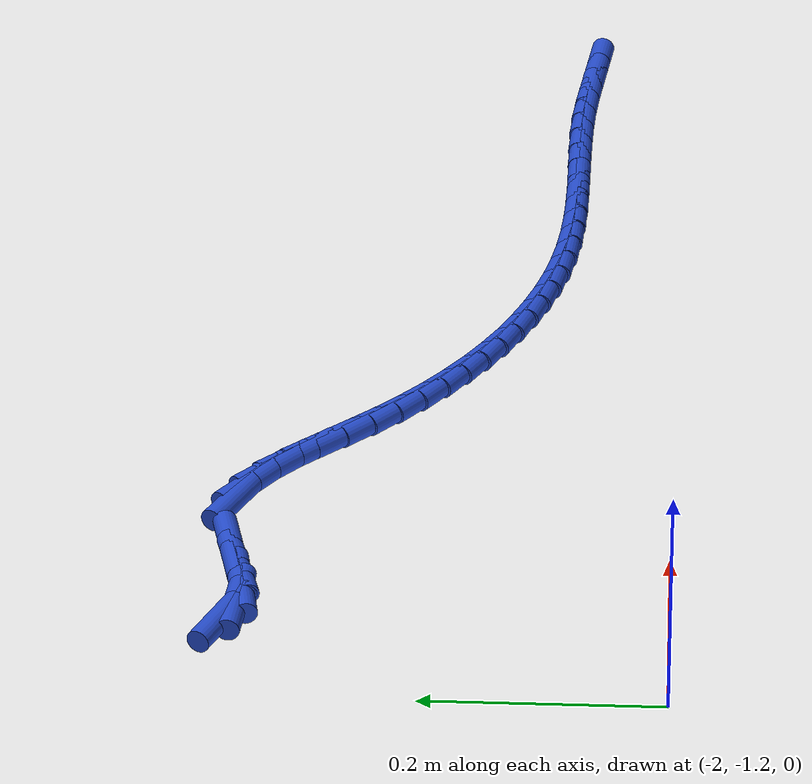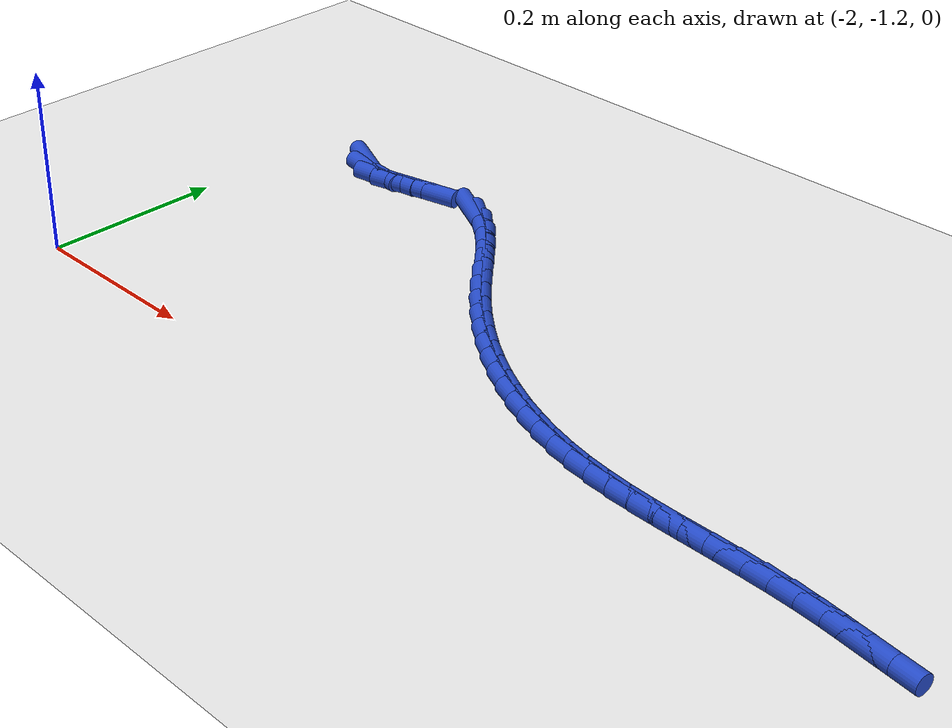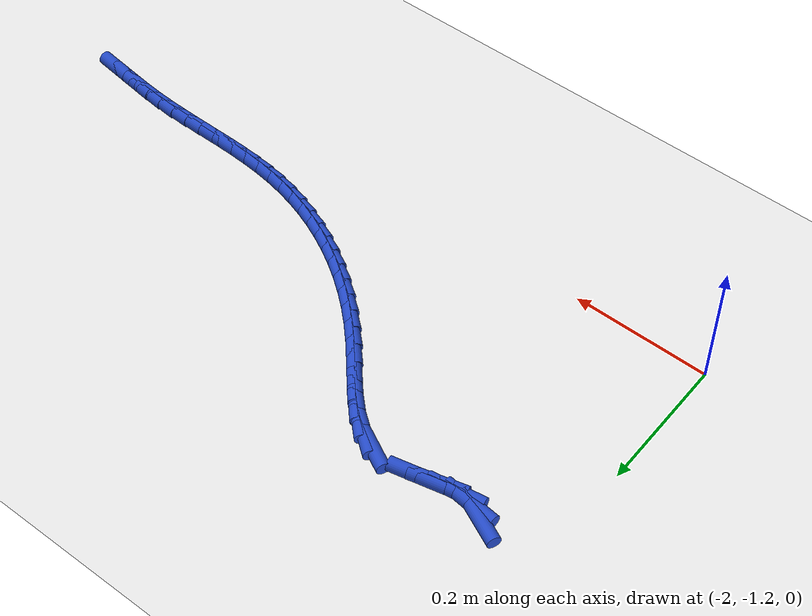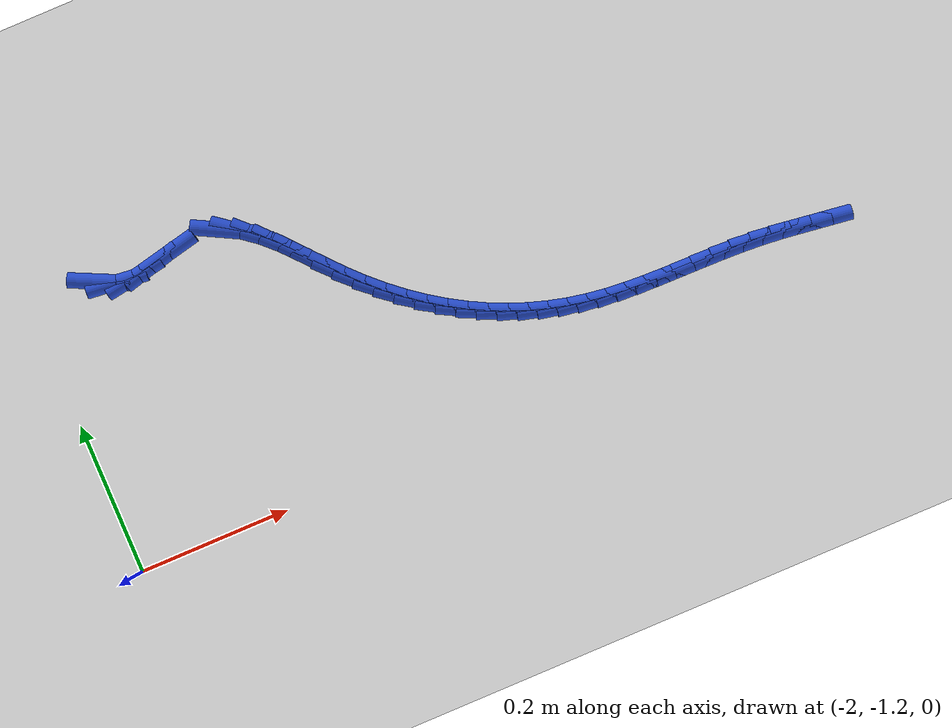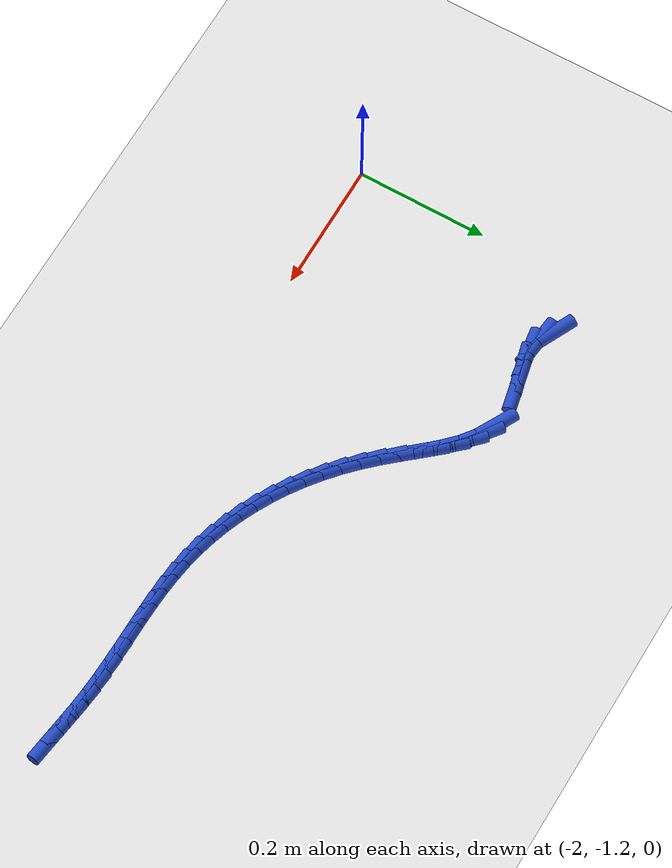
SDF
<sdf version="1.6">
 <world name="default">
  <model name="ground_plane">
   <static>1</static>
   <link name="link">
    <collision name="collision">
     <geometry><plane><normal>0 0 1</normal><size>100 100</size></plane></geometry>
     <surface><friction><ode><mu>100</mu><mu2>50</mu2></ode></friction></surface>
    </collision>
    <visual name="visual">
     <cast_shadows>0</cast_shadows>
     <geometry><plane><normal>0 0 1</normal><size>100 100</size></plane></geometry>
     <material>
      <script><uri>file://media/materials/scripts/gazebo.material</uri><name>Gazebo/WhiteGlow</name></script>
     </material>
    </visual>
   </link>
  </model>
  <model name="line">
   <link name="link_185">
    <pose>-1.9054137645655325 -0.8402780112544987 0.01 0 1.57 -0.4435042516216946</pose>
    <collision name="collision">
     <geometry><cylinder><radius>0.01</radius><length>0.08</length></cylinder></geometry>
    </collision>
    <visual name="visual">
     <material>
      <script><name>Gazebo/Blue</name><uri>file://media/materials/scripts/gazebo.material</uri></script>
     </material>
     <geometry><cylinder><radius>0.01</radius><length>0.08</length></cylinder></geometry>
    </visual>
   </link>
   <link name="link_186">
    <pose>-1.885073026390237 -0.8499412558973295 0.01 0 1.57 -0.10656992894562407</pose>
    <collision name="collision">
     <geometry><cylinder><radius>0.01</radius><length>0.08</length></cylinder></geometry>
    </collision>
    <visual name="visual">
     <material>
      <script><name>Gazebo/Blue</name><uri>file://media/materials/scripts/gazebo.material</uri></script>
     </material>
     <geometry><cylinder><radius>0.01</radius><length>0.08</length></cylinder></geometry>
    </visual>
   </link>
   <link name="link_187">
    <pose>-1.8621823950808545 -0.8523899860744041 0.01 0 1.57 0.15936166044765876</pose>
    <collision name="collision">
     <geometry><cylinder><radius>0.01</radius><length>0.08</length></cylinder></geometry>
    </collision>
    <visual name="visual">
     <material>
      <script><name>Gazebo/Blue</name><uri>file://media/materials/scripts/gazebo.material</uri></script>
     </material>
     <geometry><cylinder><radius>0.01</radius><length>0.08</length></cylinder></geometry>
    </visual>
   </link>
   <link name="link_188">
    <pose>-1.8371226980825228 -0.8483622771986161 0.01 0 1.57 0.25692435934542496</pose>
    <collision name="collision">
     <geometry><cylinder><radius>0.01</radius><length>0.08</length></cylinder></geometry>
    </collision>
    <visual name="visual">
     <material>
      <script><name>Gazebo/Blue</name><uri>file://media/materials/scripts/gazebo.material</uri></script>
     </material>
     <geometry><cylinder><radius>0.01</radius><length>0.08</length></cylinder></geometry>
    </visual>
   </link>
   <link name="link_189">
    <pose>-1.8110017778790914 -0.8414995035998011 0.01 0 1.57 0.21888201479459338</pose>
    <collision name="collision">
     <geometry><cylinder><radius>0.01</radius><length>0.08</length></cylinder></geometry>
    </collision>
    <visual name="visual">
     <material>
      <script><name>Gazebo/Blue</name><uri>file://media/materials/scripts/gazebo.material</uri></script>
     </material>
     <geometry><cylinder><radius>0.01</radius><length>0.08</length></cylinder></geometry>
    </visual>
   </link>
   <link name="link_192">
    <pose>-1.7372785083505897 -0.8405249450380923 0.01 0 1.57 -0.48090458856575136</pose>
    <collision name="collision">
     <geometry><cylinder><radius>0.01</radius><length>0.08</length></cylinder></geometry>
    </collision>
    <visual name="visual">
     <material>
      <script><name>Gazebo/Blue</name><uri>file://media/materials/scripts/gazebo.material</uri></script>
     </material>
     <geometry><cylinder><radius>0.01</radius><length>0.08</length></cylinder></geometry>
    </visual>
   </link>
   <link name="link_193">
    <pose>-1.7157610107988785 -0.8517519393175296 0.01 0 1.57 -0.6541856390213772</pose>
    <collision name="collision">
     <geometry><cylinder><radius>0.01</radius><length>0.08</length></cylinder></geometry>
    </collision>
    <visual name="visual">
     <material>
      <script><name>Gazebo/Blue</name><uri>file://media/materials/scripts/gazebo.material</uri></script>
     </material>
     <geometry><cylinder><radius>0.01</radius><length>0.08</length></cylinder></geometry>
    </visual>
   </link>
   <link name="link_194">
    <pose>-1.695365942284958 -0.8673914914414181 0.01 0 1.57 -0.7672512273337366</pose>
    <collision name="collision">
     <geometry><cylinder><radius>0.01</radius><length>0.08</length></cylinder></geometry>
    </collision>
    <visual name="visual">
     <material>
      <script><name>Gazebo/Blue</name><uri>file://media/materials/scripts/gazebo.material</uri></script>
     </material>
     <geometry><cylinder><radius>0.01</radius><length>0.08</length></cylinder></geometry>
    </visual>
   </link>
   <link name="link_195">
    <pose>-1.675753434631131 -0.8863047968749337 0.01 0 1.57 -0.8320705952762438</pose>
    <collision name="collision">
     <geometry><cylinder><radius>0.01</radius><length>0.08</length></cylinder></geometry>
    </collision>
    <visual name="visual">
     <material>
      <script><name>Gazebo/Blue</name><uri>file://media/materials/scripts/gazebo.material</uri></script>
     </material>
     <geometry><cylinder><radius>0.01</radius><length>0.08</length></cylinder></geometry>
    </visual>
   </link>
   <link name="link_196">
    <pose>-1.6565836196596992 -0.9073530510832526 0.01 0 1.57 -0.8576948869264718</pose>
    <collision name="collision">
     <geometry><cylinder><radius>0.01</radius><length>0.08</length></cylinder></geometry>
    </collision>
    <visual name="visual">
     <material>
      <script><name>Gazebo/Blue</name><uri>file://media/materials/scripts/gazebo.material</uri></script>
     </material>
     <geometry><cylinder><radius>0.01</radius><length>0.08</length></cylinder></geometry>
    </visual>
   </link>
   <link name="link_197">
    <pose>-1.6375166291929668 -0.9293974495315511 0.01 0 1.57 -0.8483570810530224</pose>
    <collision name="collision">
     <geometry><cylinder><radius>0.01</radius><length>0.08</length></cylinder></geometry>
    </collision>
    <visual name="visual">
     <material>
      <script><name>Gazebo/Blue</name><uri>file://media/materials/scripts/gazebo.material</uri></script>
     </material>
     <geometry><cylinder><radius>0.01</radius><length>0.08</length></cylinder></geometry>
    </visual>
   </link>
   <link name="link_198">
    <pose>-1.6182125950532353 -0.951299187685005 0.01 0 1.57 -0.8072348309550983</pose>
    <collision name="collision">
     <geometry><cylinder><radius>0.01</radius><length>0.08</length></cylinder></geometry>
    </collision>
    <visual name="visual">
     <material>
      <script><name>Gazebo/Blue</name><uri>file://media/materials/scripts/gazebo.material</uri></script>
     </material>
     <geometry><cylinder><radius>0.01</radius><length>0.08</length></cylinder></geometry>
    </visual>
   </link>
   <link name="link_199">
    <pose>-1.5983676563097724 -0.9720303133179993 0.01 0 1.57 -0.7555721177829479</pose>
    <collision name="collision">
     <geometry><cylinder><radius>0.01</radius><length>0.08</length></cylinder></geometry>
    </collision>
    <visual name="visual">
     <material>
      <script><name>Gazebo/Blue</name><uri>file://media/materials/scripts/gazebo.material</uri></script>
     </material>
     <geometry><cylinder><radius>0.01</radius><length>0.08</length></cylinder></geometry>
    </visual>
   </link>
   <link name="link_200">
    <pose>-1.577916310012444 -0.9912966857232672 0.01 0 1.57 -0.7026479733315156</pose>
    <collision name="collision">
     <geometry><cylinder><radius>0.01</radius><length>0.08</length></cylinder></geometry>
    </collision>
    <visual name="visual">
     <material>
      <script><name>Gazebo/Blue</name><uri>file://media/materials/scripts/gazebo.material</uri></script>
     </material>
     <geometry><cylinder><radius>0.01</radius><length>0.08</length></cylinder></geometry>
    </visual>
   </link>
   <link name="link_201">
    <pose>-1.556889915136409 -1.0091023643892818 0.01 0 1.57 -0.64860128897107</pose>
    <collision name="collision">
     <geometry><cylinder><radius>0.01</radius><length>0.08</length></cylinder></geometry>
    </collision>
    <visual name="visual">
     <material>
      <script><name>Gazebo/Blue</name><uri>file://media/materials/scripts/gazebo.material</uri></script>
     </material>
     <geometry><cylinder><radius>0.01</radius><length>0.08</length></cylinder></geometry>
    </visual>
   </link>
   <link name="link_202">
    <pose>-1.5353201103743053 -1.0254522699458513 0.01 0 1.57 -0.5935626416533766</pose>
    <collision name="collision">
     <geometry><cylinder><radius>0.01</radius><length>0.08</length></cylinder></geometry>
    </collision>
    <visual name="visual">
     <material>
      <script><name>Gazebo/Blue</name><uri>file://media/materials/scripts/gazebo.material</uri></script>
     </material>
     <geometry><cylinder><radius>0.01</radius><length>0.08</length></cylinder></geometry>
    </visual>
   </link>
   <link name="link_203">
    <pose>-1.5132385344187727 -1.0403513230227819 0.01 0 1.57 -0.5376805571363676</pose>
    <collision name="collision">
     <geometry><cylinder><radius>0.01</radius><length>0.08</length></cylinder></geometry>
    </collision>
    <visual name="visual">
     <material>
      <script><name>Gazebo/Blue</name><uri>file://media/materials/scripts/gazebo.material</uri></script>
     </material>
     <geometry><cylinder><radius>0.01</radius><length>0.08</length></cylinder></geometry>
    </visual>
   </link>
   <link name="link_204">
    <pose>-1.4906768259624514 -1.0538044442498804 0.01 0 1.57 -0.48111910025632426</pose>
    <collision name="collision">
     <geometry><cylinder><radius>0.01</radius><length>0.08</length></cylinder></geometry>
    </collision>
    <visual name="visual">
     <material>
      <script><name>Gazebo/Blue</name><uri>file://media/materials/scripts/gazebo.material</uri></script>
     </material>
     <geometry><cylinder><radius>0.01</radius><length>0.08</length></cylinder></geometry>
    </visual>
   </link>
   <link name="link_205">
    <pose>-1.4676666236979794 -1.0658165542569533 0.01 0 1.57 -0.4240546378361914</pose>
    <collision name="collision">
     <geometry><cylinder><radius>0.01</radius><length>0.08</length></cylinder></geometry>
    </collision>
    <visual name="visual">
     <material>
      <script><name>Gazebo/Blue</name><uri>file://media/materials/scripts/gazebo.material</uri></script>
     </material>
     <geometry><cylinder><radius>0.01</radius><length>0.08</length></cylinder></geometry>
    </visual>
   </link>
   <link name="link_206">
    <pose>-1.4442395663179972 -1.0763925736738078 0.01 0 1.57 -0.3666719081403091</pose>
    <collision name="collision">
     <geometry><cylinder><radius>0.01</radius><length>0.08</length></cylinder></geometry>
    </collision>
    <visual name="visual">
     <material>
      <script><name>Gazebo/Blue</name><uri>file://media/materials/scripts/gazebo.material</uri></script>
     </material>
     <geometry><cylinder><radius>0.01</radius><length>0.08</length></cylinder></geometry>
    </visual>
   </link>
   <link name="link_207">
    <pose>-1.4204272925151433 -1.0855374231302506 0.01 0 1.57 -0.30915960207166027</pose>
    <collision name="collision">
     <geometry><cylinder><radius>0.01</radius><length>0.08</length></cylinder></geometry>
    </collision>
    <visual name="visual">
     <material>
      <script><name>Gazebo/Blue</name><uri>file://media/materials/scripts/gazebo.material</uri></script>
     </material>
     <geometry><cylinder><radius>0.01</radius><length>0.08</length></cylinder></geometry>
    </visual>
   </link>
   <link name="link_208">
    <pose>-1.3962614409820577 -1.0932560232560886 0.01 0 1.57 -0.2517057143245134</pose>
    <collision name="collision">
     <geometry><cylinder><radius>0.01</radius><length>0.08</length></cylinder></geometry>
    </collision>
    <visual name="visual">
     <material>
      <script><name>Gazebo/Blue</name><uri>file://media/materials/scripts/gazebo.material</uri></script>
     </material>
     <geometry><cylinder><radius>0.01</radius><length>0.08</length></cylinder></geometry>
    </visual>
   </link>
   <link name="link_209">
    <pose>-1.3717736504113787 -1.0995532946811282 0.01 0 1.57 -0.19449294844781856</pose>
    <collision name="collision">
     <geometry><cylinder><radius>0.01</radius><length>0.08</length></cylinder></geometry>
    </collision>
    <visual name="visual">
     <material>
      <script><name>Gazebo/Blue</name><uri>file://media/materials/scripts/gazebo.material</uri></script>
     </material>
     <geometry><cylinder><radius>0.01</radius><length>0.08</length></cylinder></geometry>
    </visual>
   </link>
   <link name="link_210">
    <pose>-1.3469955594957468 -1.1044341580351764 0.01 0 1.57 -0.13878715184712548</pose>
    <collision name="collision">
     <geometry><cylinder><radius>0.01</radius><length>0.08</length></cylinder></geometry>
    </collision>
    <visual name="visual">
     <material>
      <script><name>Gazebo/Blue</name><uri>file://media/materials/scripts/gazebo.material</uri></script>
     </material>
     <geometry><cylinder><radius>0.01</radius><length>0.08</length></cylinder></geometry>
    </visual>
   </link>
   <link name="link_211">
    <pose>-1.3219572435368219 -1.1079316394986873 0.01 0 1.57 -0.0914349516435065</pose>
    <collision name="collision">
     <geometry><cylinder><radius>0.01</radius><length>0.08</length></cylinder></geometry>
    </collision>
    <visual name="visual">
     <material>
      <script><name>Gazebo/Blue</name><uri>file://media/materials/scripts/gazebo.material</uri></script>
     </material>
     <geometry><cylinder><radius>0.01</radius><length>0.08</length></cylinder></geometry>
    </visual>
   </link>
   <link name="link_212">
    <pose>-1.2966792866627872 -1.110249390937362 0.01 0 1.57 -0.05506913832343503</pose>
    <collision name="collision">
     <geometry><cylinder><radius>0.01</radius><length>0.08</length></cylinder></geometry>
    </collision>
    <visual name="visual">
     <material>
      <script><name>Gazebo/Blue</name><uri>file://media/materials/scripts/gazebo.material</uri></script>
     </material>
     <geometry><cylinder><radius>0.01</radius><length>0.08</length></cylinder></geometry>
    </visual>
   </link>
   <link name="link_213">
    <pose>-1.2711787105785954 -1.1116551069726077 0.01 0 1.57 -0.029614151442591944</pose>
    <collision name="collision">
     <geometry><cylinder><radius>0.01</radius><length>0.08</length></cylinder></geometry>
    </collision>
    <visual name="visual">
     <material>
      <script><name>Gazebo/Blue</name><uri>file://media/materials/scripts/gazebo.material</uri></script>
     </material>
     <geometry><cylinder><radius>0.01</radius><length>0.08</length></cylinder></geometry>
    </visual>
   </link>
   <link name="link_214">
    <pose>-1.2454725306437762 -1.112416596299421 0.01 0 1.57 -0.014869526018171058</pose>
    <collision name="collision">
     <geometry><cylinder><radius>0.01</radius><length>0.08</length></cylinder></geometry>
    </collision>
    <visual name="visual">
     <material>
      <script><name>Gazebo/Blue</name><uri>file://media/materials/scripts/gazebo.material</uri></script>
     </material>
     <geometry><cylinder><radius>0.01</radius><length>0.08</length></cylinder></geometry>
    </visual>
   </link>
   <link name="link_215">
    <pose>-1.2195777622178596 -1.1128016676127988 0.01 0 1.57 -0.010605693503311513</pose>
    <collision name="collision">
     <geometry><cylinder><radius>0.01</radius><length>0.08</length></cylinder></geometry>
    </collision>
    <visual name="visual">
     <material>
      <script><name>Gazebo/Blue</name><uri>file://media/materials/scripts/gazebo.material</uri></script>
     </material>
     <geometry><cylinder><radius>0.01</radius><length>0.08</length></cylinder></geometry>
    </visual>
   </link>
   <link name="link_216">
    <pose>-1.1935114206603756 -1.1130781296077372 0.01 0 1.57 -0.016613514401312052</pose>
    <collision name="collision">
     <geometry><cylinder><radius>0.01</radius><length>0.08</length></cylinder></geometry>
    </collision>
    <visual name="visual">
     <material>
      <script><name>Gazebo/Blue</name><uri>file://media/materials/scripts/gazebo.material</uri></script>
     </material>
     <geometry><cylinder><radius>0.01</radius><length>0.08</length></cylinder></geometry>
    </visual>
   </link>
   <link name="link_217">
    <pose>-1.1672905213308535 -1.113513790979234 0.01 0 1.57 -0.03271671496481062</pose>
    <collision name="collision">
     <geometry><cylinder><radius>0.01</radius><length>0.08</length></cylinder></geometry>
    </collision>
    <visual name="visual">
     <material>
      <script><name>Gazebo/Blue</name><uri>file://media/materials/scripts/gazebo.material</uri></script>
     </material>
     <geometry><cylinder><radius>0.01</radius><length>0.08</length></cylinder></geometry>
    </visual>
   </link>
   <link name="link_218">
    <pose>-1.140932079588823 -1.1143764604222857 0.01 0 1.57 -0.058752052000814285</pose>
    <collision name="collision">
     <geometry><cylinder><radius>0.01</radius><length>0.08</length></cylinder></geometry>
    </collision>
    <visual name="visual">
     <material>
      <script><name>Gazebo/Blue</name><uri>file://media/materials/scripts/gazebo.material</uri></script>
     </material>
     <geometry><cylinder><radius>0.01</radius><length>0.08</length></cylinder></geometry>
    </visual>
   </link>
   <link name="link_219">
    <pose>-1.1144531107938138 -1.1159339466318887 0.01 0 1.57 -0.09324233246531746</pose>
    <collision name="collision">
     <geometry><cylinder><radius>0.01</radius><length>0.08</length></cylinder></geometry>
    </collision>
    <visual name="visual">
     <material>
      <script><name>Gazebo/Blue</name><uri>file://media/materials/scripts/gazebo.material</uri></script>
     </material>
     <geometry><cylinder><radius>0.01</radius><length>0.08</length></cylinder></geometry>
    </visual>
   </link>
   <link name="link_220">
    <pose>-1.0878743669183935 -1.1184194178887468 0.01 0 1.57 -0.12130961223970686</pose>
    <collision name="collision">
     <geometry><cylinder><radius>0.01</radius><length>0.08</length></cylinder></geometry>
    </collision>
    <visual name="visual">
     <material>
      <script><name>Gazebo/Blue</name><uri>file://media/materials/scripts/gazebo.material</uri></script>
     </material>
     <geometry><cylinder><radius>0.01</radius><length>0.08</length></cylinder></geometry>
    </visual>
   </link>
   <link name="link_221">
    <pose>-1.0612599751907277 -1.1216639305049756 0.01 0 1.57 -0.1338239198432416</pose>
    <collision name="collision">
     <geometry><cylinder><radius>0.01</radius><length>0.08</length></cylinder></geometry>
    </collision>
    <visual name="visual">
     <material>
      <script><name>Gazebo/Blue</name><uri>file://media/materials/scripts/gazebo.material</uri></script>
     </material>
     <geometry><cylinder><radius>0.01</radius><length>0.08</length></cylinder></geometry>
    </visual>
   </link>
   <link name="link_222">
    <pose>-1.034702017050192 -1.1252393902068638 0.01 0 1.57 -0.13079539081399227</pose>
    <collision name="collision">
     <geometry><cylinder><radius>0.01</radius><length>0.08</length></cylinder></geometry>
    </collision>
    <visual name="visual">
     <material>
      <script><name>Gazebo/Blue</name><uri>file://media/materials/scripts/gazebo.material</uri></script>
     </material>
     <geometry><cylinder><radius>0.01</radius><length>0.08</length></cylinder></geometry>
    </visual>
   </link>
  </model>
 </world>
</sdf>
